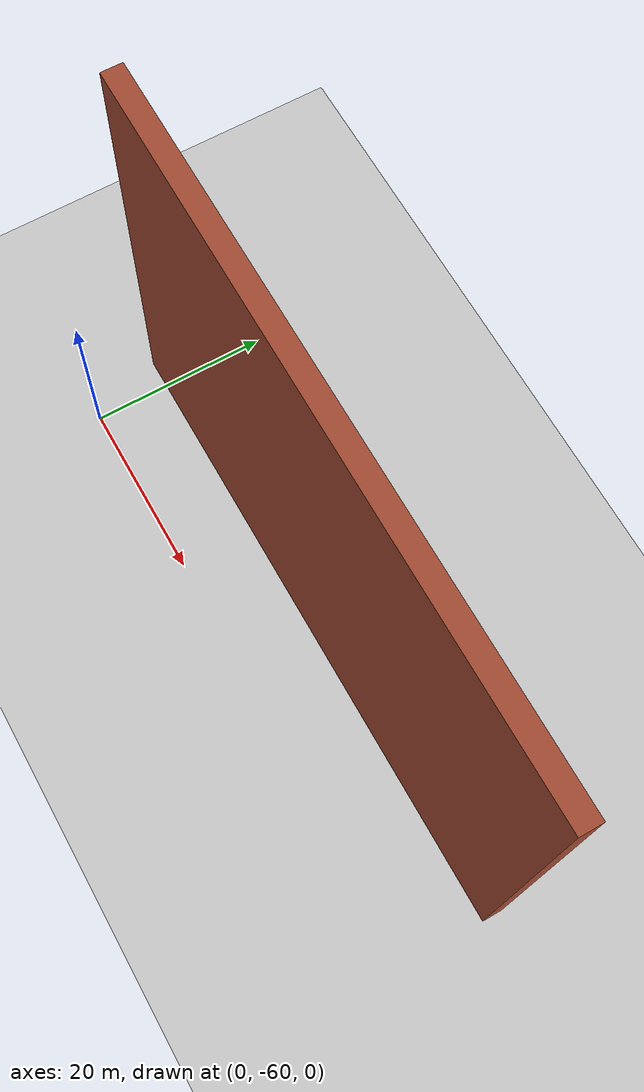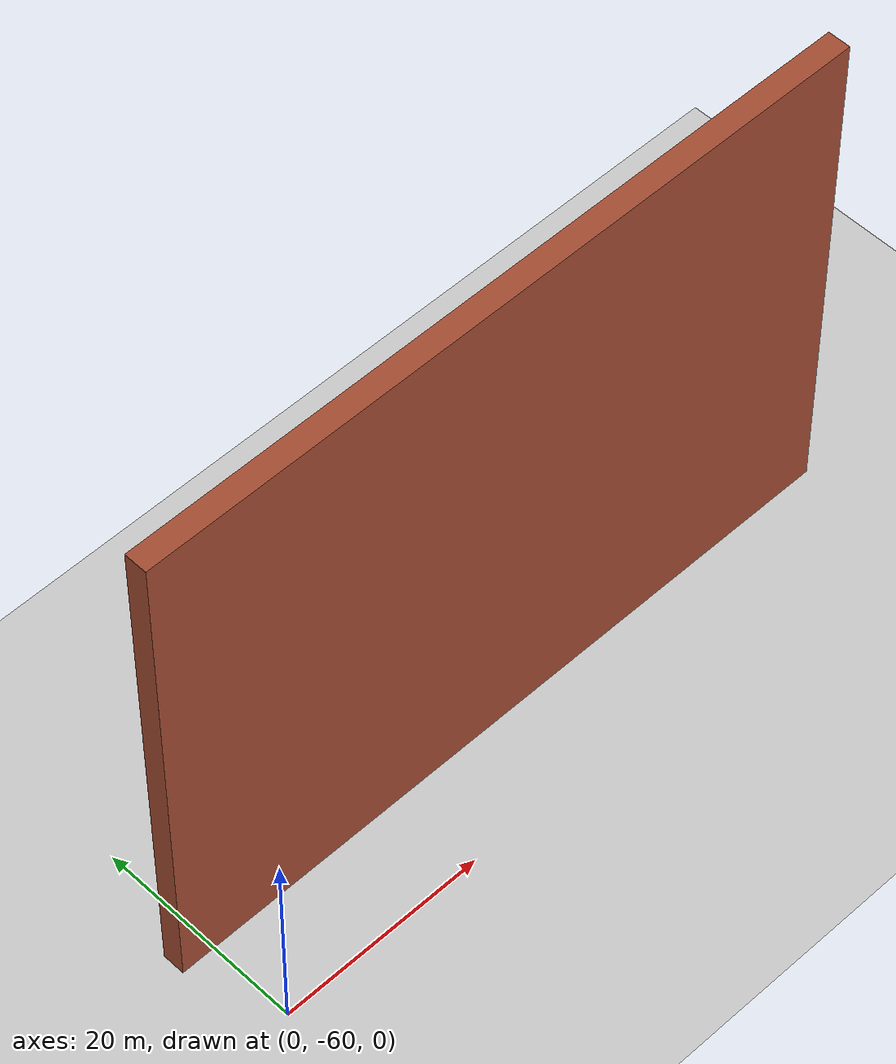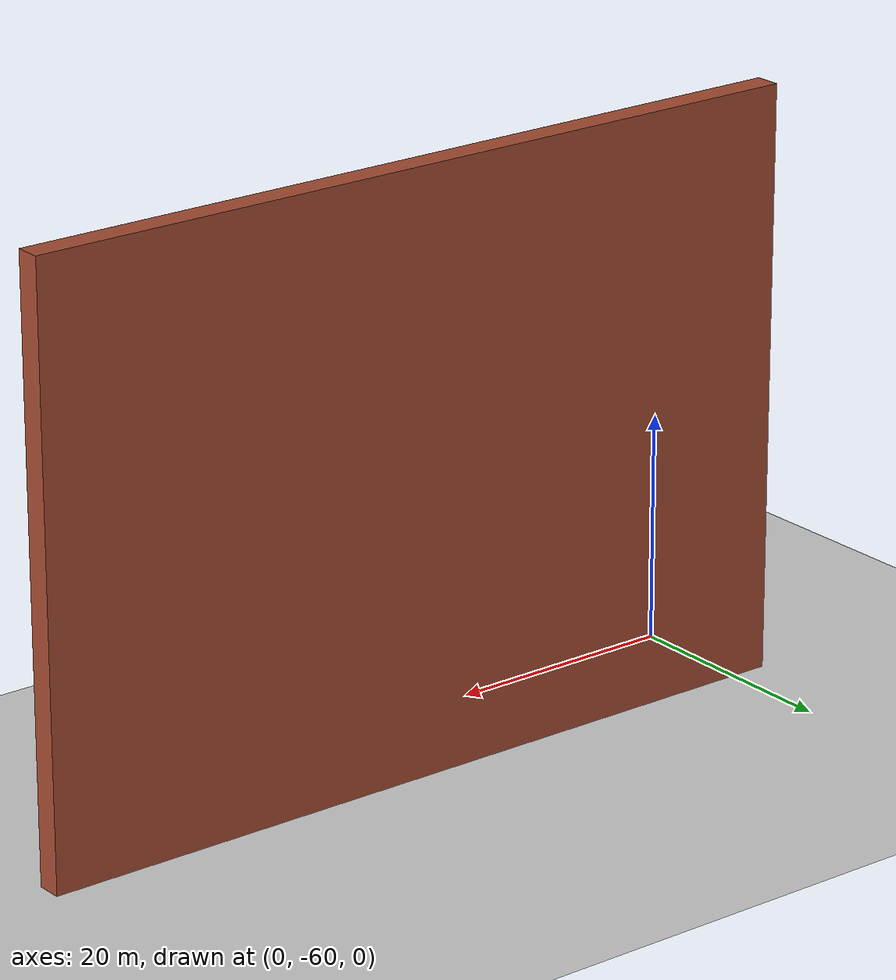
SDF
<sdf version="1.6">
 <world name="default">
  <model name="ground_plane">
   <static>1</static>
   <link name="link">
    <collision name="collision">
     <geometry><plane><normal>0 0 1</normal><size>100 100</size></plane></geometry>
     <surface><friction><ode><mu>100</mu><mu2>50</mu2></ode></friction></surface>
    </collision>
    <visual name="visual">
     <cast_shadows>0</cast_shadows>
     <geometry><plane><normal>0 0 1</normal><size>100 100</size></plane></geometry>
     <material>
      <script><uri>file://media/materials/scripts/gazebo.material</uri><name>Gazebo/Grey</name></script>
     </material>
    </visual>
   </link>
  </model>
  <light name="sun" type="directional">
   <pose>0 0 10 0 -0 0</pose>
   <diffuse>0.8 0.8 0.8 1</diffuse>
   <specular>0.2 0.2 0.2 1</specular>
   <attenuation>
    <range>1000</range>
    <constant>0.9</constant>
    <linear>0.01</linear>
    <quadratic>0.001</quadratic>
   </attenuation>
   <direction>-0.5 0.1 -0.9</direction>
  </light>
  <physics name="default_physics" default="0" type="ode">
   <max_contacts>100</max_contacts>
   <max_step_size>0.01</max_step_size>
   <ode>
    <solver>
     <iters>50</iters>
     <type>quick</type>
     <sor>1.3</sor>
     <use_dynamic_moi_rescaling>0</use_dynamic_moi_rescaling>
    </solver>
    <constraints>
     <cfm>0</cfm>
     <erp>0.2</erp>
     <contact_max_correcting_vel>100</contact_max_correcting_vel>
     <contact_surface_layer>0.001</contact_surface_layer>
    </constraints>
   </ode>
   <real_time_factor>1</real_time_factor>
   <real_time_update_rate>1000</real_time_update_rate>
  </physics>
  <gravity>0 0 -9.8</gravity>
  <magnetic_field>6e-06 2.3e-05 -4.2e-05</magnetic_field>
  <atmosphere type="adiabatic"/>
  <scene><ambient>0.4 0.4 0.4 1</ambient><background>0.7 0.7 0.7 1</background><shadows>1</shadows></scene>
  <spherical_coordinates>
   <surface_model>EARTH_WGS84</surface_model>
   <latitude_deg>0</latitude_deg>
   <longitude_deg>0</longitude_deg>
   <elevation>0</elevation>
   <heading_deg>0</heading_deg>
  </spherical_coordinates>
  <model name="Untitled_0">
   <pose>32.025 -50.59 0 0 -0 0</pose>
   <link name="Wall_0">
    <collision name="Wall_0_Collision">
     <geometry><box><size>70.5 2.15 50.5</size></box></geometry>
     <pose>0 0 25.25 0 -0 0</pose>
    </collision>
    <visual name="Wall_0_Visual">
     <pose>0 0 25.25 0 -0 0</pose>
     <geometry><box><size>70.5 2.15 50.5</size></box></geometry>
     <material>
      <script><uri>file://media/materials/scripts/gazebo.material</uri><name>Gazebo/Bricks</name></script>
      <ambient>1 1 1 1</ambient>
     </material>
     <meta><layer>0</layer></meta>
    </visual>
   </link>
   <static>1</static>
  </model>
 </world>
</sdf>
